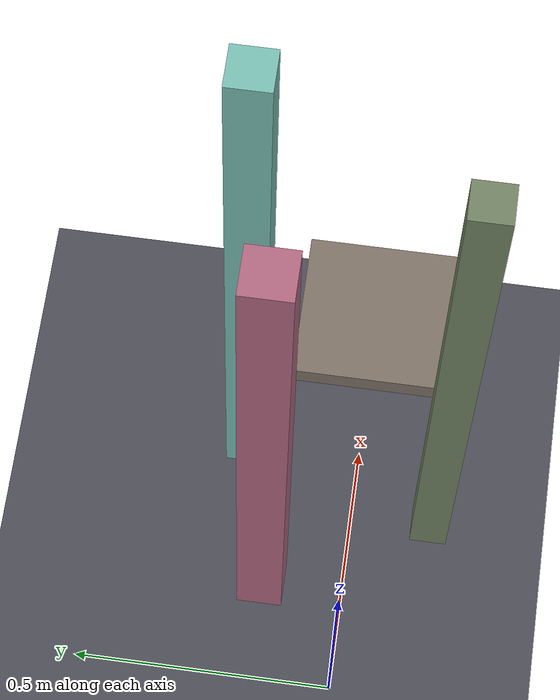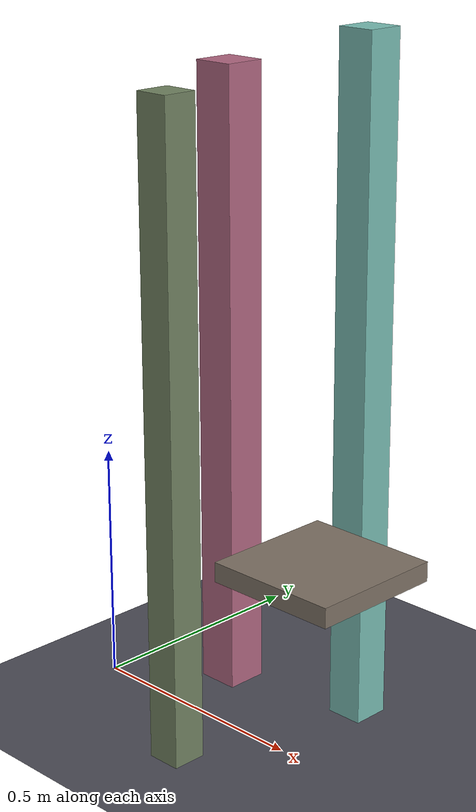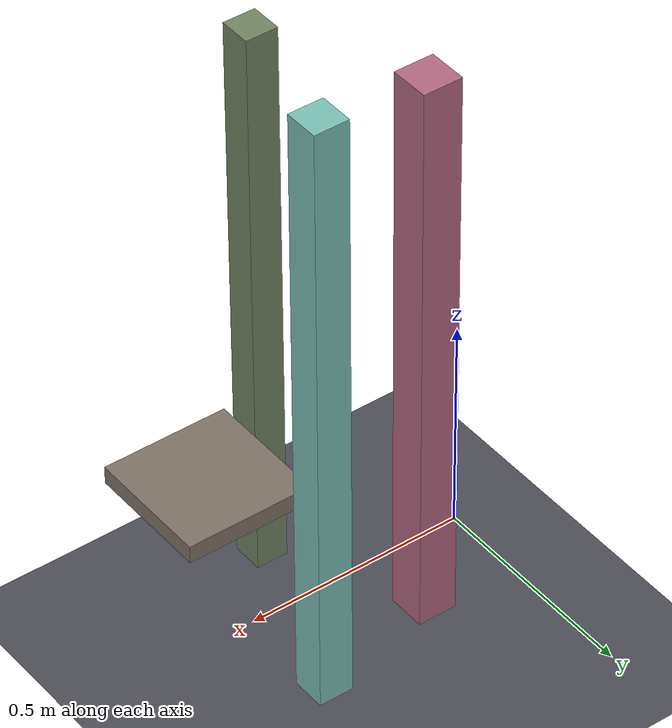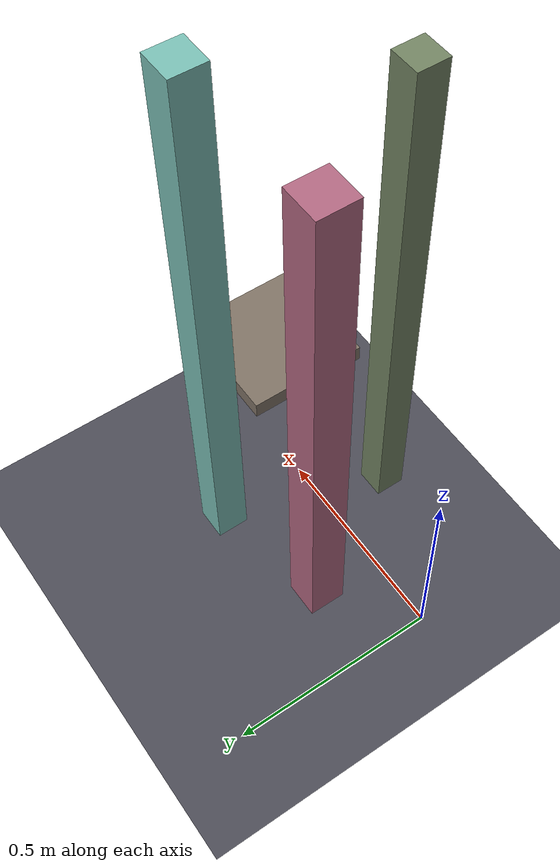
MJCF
<mujoco model="pillar_avoid_6">
  <compiler angle="radian" autolimits="true" boundmass="0" balanceinertia="true"/>
  <option impratio="10" gravity="0 0 -9.8" integrator="implicitfast" cone="elliptic" jacobian="sparse" noslip_iterations="4">
    <flag multiccd="enable" contact="enable" warmstart="enable"/>
  </option>
  <size njmax="6000" nconmax="6000"/>
  <visual><global offwidth="1280" offheight="720"/><map znear="0.001"/>
    <headlight ambient="0.45 0.45 0.45" diffuse="0.6 0.6 0.6"/></visual>
  <worldbody>
    <light pos="0.4 0.4 3" dir="0 0 -1" diffuse="0.7 0.7 0.7"/>
    <!-- Obstacle-avoidance variant 6: 3 tall PHYSICAL pillars; placements blocking >10%
         of exo-camera sightlines to the arm excluded (training view preserved). -->
    <body name="pillars" pos="0 0 0"><geom name="floor" type="plane" size="5 5 0.1" pos="0 0 0" rgba="0.30 0.30 0.34 1" contype="8" conaffinity="15"/><geom name="obj_pad" type="box" pos="0.60 0 0.42" size="0.14 0.14 0.02" rgba="0.5 0.45 0.4 1" contype="8" conaffinity="15"/><geom name="pillar_1" type="box" pos="0.366 -0.157 0.654" size="0.036 0.036 0.654" contype="8" conaffinity="15" rgba="0.45 0.52 0.39 1"/><geom name="pillar_3" type="box" pos="0.200 0.159 0.655" size="0.044 0.044 0.655" contype="8" conaffinity="15" rgba="0.70 0.41 0.51 1"/><geom name="pillar_4" type="box" pos="0.495 0.227 0.697" size="0.039 0.039 0.697" contype="8" conaffinity="15" rgba="0.48 0.75 0.71 1"/></body>
  </worldbody>
</mujoco>
